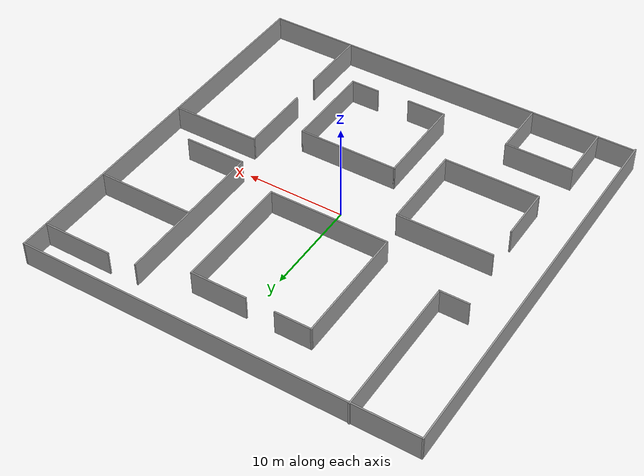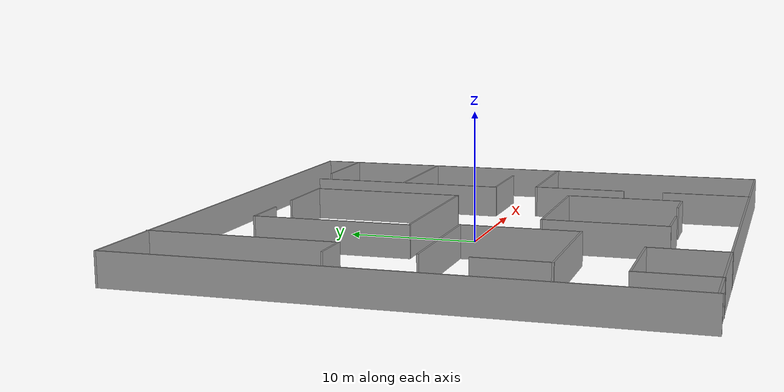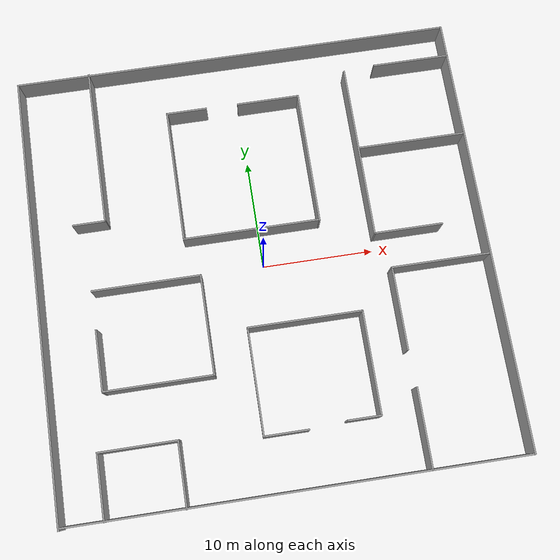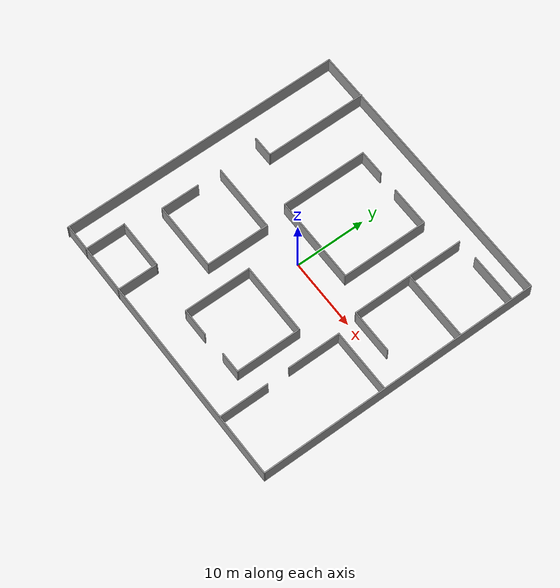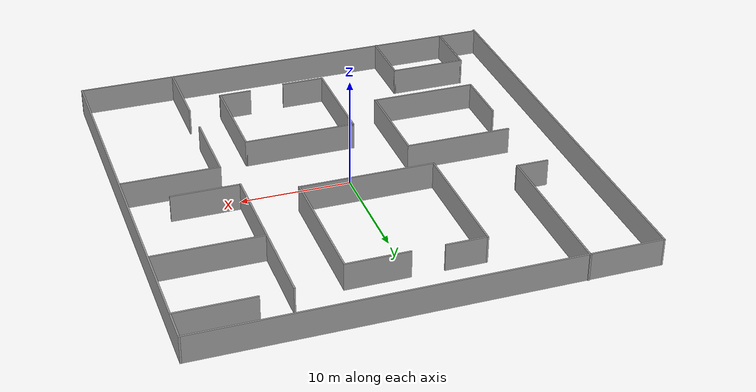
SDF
<?xml version='1.0'?>
<sdf version='1.7'>
  <model name='house01'>
    <pose>0 0.041078 0 0 -0 0</pose>
    <link name='Wall_0'>
      <collision name='Wall_0_Collision'>
        <geometry>
          <box>
            <size>40.15 0.15 2.5</size>
          </box>
        </geometry>
        <pose>0 0 1.25 0 -0 0</pose>
      </collision>
      <visual name='Wall_0_Visual'>
        <pose>0 0 1.25 0 -0 0</pose>
        <geometry>
          <box>
            <size>40.15 0.15 2.5</size>
          </box>
        </geometry>
        <material>
          <script>
            <uri>file://media/materials/scripts/gazebo.material</uri>
            <name>Gazebo/Grey</name>
          </script>
          <ambient>1 1 1 1</ambient>
        </material>
        <meta>
          <layer>0</layer>
        </meta>
      </visual>
      <pose>-20 -0.041078 0 0 -0 -1.5708</pose>
    </link>
    <link name='Wall_10'>
      <collision name='Wall_10_Collision'>
        <geometry>
          <box>
            <size>14.5 0.15 2.5</size>
          </box>
        </geometry>
        <pose>0 0 1.25 0 -0 0</pose>
      </collision>
      <visual name='Wall_10_Visual'>
        <pose>0 0 1.25 0 -0 0</pose>
        <geometry>
          <box>
            <size>14.5 0.15 2.5</size>
          </box>
        </geometry>
        <material>
          <script>
            <uri>file://media/materials/scripts/gazebo.material</uri>
            <name>Gazebo/Grey</name>
          </script>
          <ambient>1 1 1 1</ambient>
        </material>
        <meta>
          <layer>0</layer>
        </meta>
      </visual>
      <pose>-13.4074 12.8661 0 0 -0 -1.5708</pose>
    </link>
    <link name='Wall_11'>
      <collision name='Wall_11_Collision'>
        <geometry>
          <box>
            <size>3 0.15 2.5</size>
          </box>
        </geometry>
        <pose>0 0 1.25 0 -0 0</pose>
      </collision>
      <visual name='Wall_11_Visual'>
        <pose>0 0 1.25 0 -0 0</pose>
        <geometry>
          <box>
            <size>3 0.15 2.5</size>
          </box>
        </geometry>
        <material>
          <script>
            <uri>file://media/materials/scripts/gazebo.material</uri>
            <name>Gazebo/Grey</name>
          </script>
          <ambient>1 1 1 1</ambient>
        </material>
        <meta>
          <layer>0</layer>
        </meta>
      </visual>
      <pose>-14.8324 5.69108 0 0 -0 3.14159</pose>
    </link>
    <link name='Wall_13'>
      <collision name='Wall_13_Collision'>
        <geometry>
          <box>
            <size>12.25 0.15 2.5</size>
          </box>
        </geometry>
        <pose>0 0 1.25 0 -0 0</pose>
      </collision>
      <visual name='Wall_13_Visual'>
        <pose>0 0 1.25 0 -0 0</pose>
        <geometry>
          <box>
            <size>12.25 0.15 2.5</size>
          </box>
        </geometry>
        <material>
          <script>
            <uri>file://media/materials/scripts/gazebo.material</uri>
            <name>Gazebo/Grey</name>
          </script>
          <ambient>1 1 1 1</ambient>
        </material>
        <meta>
          <layer>0</layer>
        </meta>
      </visual>
      <pose>-6.66996 9.03154 0 0 -0 -1.5708</pose>
    </link>
    <link name='Wall_14'>
      <collision name='Wall_14_Collision'>
        <geometry>
          <box>
            <size>12.25 0.15 2.5</size>
          </box>
        </geometry>
        <pose>0 0 1.25 0 -0 0</pose>
      </collision>
      <visual name='Wall_14_Visual'>
        <pose>0 0 1.25 0 -0 0</pose>
        <geometry>
          <box>
            <size>12.25 0.15 2.5</size>
          </box>
        </geometry>
        <material>
          <script>
            <uri>file://media/materials/scripts/gazebo.material</uri>
            <name>Gazebo/Grey</name>
          </script>
          <ambient>1 1 1 1</ambient>
        </material>
        <meta>
          <layer>0</layer>
        </meta>
      </visual>
      <pose>-0.619958 2.98154 0 0 -0 0</pose>
    </link>
    <link name='Wall_18'>
      <collision name='Wall_18_Collision'>
        <geometry>
          <box>
            <size>3.75 0.15 2.5</size>
          </box>
        </geometry>
        <pose>0 0 1.25 0 -0 0</pose>
      </collision>
      <visual name='Wall_18_Visual'>
        <pose>0 0 1.25 0 -0 0</pose>
        <geometry>
          <box>
            <size>3.75 0.15 2.5</size>
          </box>
        </geometry>
        <material>
          <script>
            <uri>file://media/materials/scripts/gazebo.material</uri>
            <name>Gazebo/Grey</name>
          </script>
          <ambient>1 1 1 1</ambient>
        </material>
        <meta>
          <layer>0</layer>
        </meta>
      </visual>
      <pose>-4.86996 15.0815 0 0 -0 0</pose>
    </link>
    <link name='Wall_27'>
      <collision name='Wall_27_Collision'>
        <geometry>
          <box>
            <size>5.75 0.15 2.5</size>
          </box>
        </geometry>
        <pose>0 0 1.25 0 -0 0</pose>
      </collision>
      <visual name='Wall_27_Visual'>
        <pose>0 0 1.25 0 -0 0</pose>
        <geometry>
          <box>
            <size>5.75 0.15 2.5</size>
          </box>
        </geometry>
        <material>
          <script>
            <uri>file://media/materials/scripts/gazebo.material</uri>
            <name>Gazebo/Grey</name>
          </script>
          <ambient>1 1 1 1</ambient>
        </material>
        <meta>
          <layer>0</layer>
        </meta>
      </visual>
      <pose>2.73778 15.0534 0 0 -0 0</pose>
    </link>
    <link name='Wall_28'>
      <collision name='Wall_28_Collision'>
        <geometry>
          <box>
            <size>12.25 0.15 2.5</size>
          </box>
        </geometry>
        <pose>0 0 1.25 0 -0 0</pose>
      </collision>
      <visual name='Wall_28_Visual'>
        <pose>0 0 1.25 0 -0 0</pose>
        <geometry>
          <box>
            <size>12.25 0.15 2.5</size>
          </box>
        </geometry>
        <material>
          <script>
            <uri>file://media/materials/scripts/gazebo.material</uri>
            <name>Gazebo/Grey</name>
          </script>
          <ambient>1 1 1 1</ambient>
        </material>
        <meta>
          <layer>0</layer>
        </meta>
      </visual>
      <pose>5.53777 9.00338 0 0 -0 -1.5708</pose>
    </link>
    <link name='Wall_30'>
      <collision name='Wall_30_Collision'>
        <geometry>
          <box>
            <size>9.75 0.15 2.5</size>
          </box>
        </geometry>
        <pose>0 0 1.25 0 -0 0</pose>
      </collision>
      <visual name='Wall_30_Visual'>
        <pose>0 0 1.25 0 -0 0</pose>
        <geometry>
          <box>
            <size>9.75 0.15 2.5</size>
          </box>
        </geometry>
        <material>
          <script>
            <uri>file://media/materials/scripts/gazebo.material</uri>
            <name>Gazebo/Grey</name>
          </script>
          <ambient>1 1 1 1</ambient>
        </material>
        <meta>
          <layer>0</layer>
        </meta>
      </visual>
      <pose>-10.4369 -0.498737 0 0 -0 0</pose>
    </link>
    <link name='Wall_31'>
      <collision name='Wall_31_Collision'>
        <geometry>
          <box>
            <size>9 0.15 2.5</size>
          </box>
        </geometry>
        <pose>0 0 1.25 0 -0 0</pose>
      </collision>
      <visual name='Wall_31_Visual'>
        <pose>0 0 1.25 0 -0 0</pose>
        <geometry>
          <box>
            <size>9 0.15 2.5</size>
          </box>
        </geometry>
        <material>
          <script>
            <uri>file://media/materials/scripts/gazebo.material</uri>
            <name>Gazebo/Grey</name>
          </script>
          <ambient>1 1 1 1</ambient>
        </material>
        <meta>
          <layer>0</layer>
        </meta>
      </visual>
      <pose>-5.63687 -4.92374 0 0 -0 -1.5708</pose>
    </link>
    <link name='Wall_32'>
      <collision name='Wall_32_Collision'>
        <geometry>
          <box>
            <size>9.75 0.15 2.5</size>
          </box>
        </geometry>
        <pose>0 0 1.25 0 -0 0</pose>
      </collision>
      <visual name='Wall_32_Visual'>
        <pose>0 0 1.25 0 -0 0</pose>
        <geometry>
          <box>
            <size>9.75 0.15 2.5</size>
          </box>
        </geometry>
        <material>
          <script>
            <uri>file://media/materials/scripts/gazebo.material</uri>
            <name>Gazebo/Grey</name>
          </script>
          <ambient>1 1 1 1</ambient>
        </material>
        <meta>
          <layer>0</layer>
        </meta>
      </visual>
      <pose>-10.4369 -9.34874 0 0 -0 3.14159</pose>
    </link>
    <link name='Wall_33'>
      <collision name='Wall_33_Collision'>
        <geometry>
          <box>
            <size>5.5 0.15 2.5</size>
          </box>
        </geometry>
        <pose>0 0 1.25 0 -0 0</pose>
      </collision>
      <visual name='Wall_33_Visual'>
        <pose>0 0 1.25 0 -0 0</pose>
        <geometry>
          <box>
            <size>5.5 0.15 2.5</size>
          </box>
        </geometry>
        <material>
          <script>
            <uri>file://media/materials/scripts/gazebo.material</uri>
            <name>Gazebo/Grey</name>
          </script>
          <ambient>1 1 1 1</ambient>
        </material>
        <meta>
          <layer>0</layer>
        </meta>
      </visual>
      <pose>-15.2369 -6.67374 0 0 -0 1.5708</pose>
    </link>
    <link name='Wall_35'>
      <collision name='Wall_35_Collision'>
        <geometry>
          <box>
            <size>9.5 0.15 2.5</size>
          </box>
        </geometry>
        <pose>0 0 1.25 0 -0 0</pose>
      </collision>
      <visual name='Wall_35_Visual'>
        <pose>0 0 1.25 0 -0 0</pose>
        <geometry>
          <box>
            <size>9.5 0.15 2.5</size>
          </box>
        </geometry>
        <material>
          <script>
            <uri>file://media/materials/scripts/gazebo.material</uri>
            <name>Gazebo/Grey</name>
          </script>
          <ambient>1 1 1 1</ambient>
        </material>
        <meta>
          <layer>0</layer>
        </meta>
      </visual>
      <pose>-2.22977 -10.414 0 0 -0 -1.5708</pose>
    </link>
    <link name='Wall_36'>
      <collision name='Wall_36_Collision'>
        <geometry>
          <box>
            <size>4 0.15 2.5</size>
          </box>
        </geometry>
        <pose>0 0 1.25 0 -0 0</pose>
      </collision>
      <visual name='Wall_36_Visual'>
        <pose>0 0 1.25 0 -0 0</pose>
        <geometry>
          <box>
            <size>4 0.15 2.5</size>
          </box>
        </geometry>
        <material>
          <script>
            <uri>file://media/materials/scripts/gazebo.material</uri>
            <name>Gazebo/Grey</name>
          </script>
          <ambient>1 1 1 1</ambient>
        </material>
        <meta>
          <layer>0</layer>
        </meta>
      </visual>
      <pose>-0.304773 -15.089 0 0 -0 0</pose>
    </link>
    <link name='Wall_38'>
      <collision name='Wall_38_Collision'>
        <geometry>
          <box>
            <size>10.25 0.15 2.5</size>
          </box>
        </geometry>
        <pose>0 0 1.25 0 -0 0</pose>
      </collision>
      <visual name='Wall_38_Visual'>
        <pose>0 0 1.25 0 -0 0</pose>
        <geometry>
          <box>
            <size>10.25 0.15 2.5</size>
          </box>
        </geometry>
        <material>
          <script>
            <uri>file://media/materials/scripts/gazebo.material</uri>
            <name>Gazebo/Grey</name>
          </script>
          <ambient>1 1 1 1</ambient>
        </material>
        <meta>
          <layer>0</layer>
        </meta>
      </visual>
      <pose>2.82023 -5.739 0 0 -0 0</pose>
    </link>
    <link name='Wall_4'>
      <collision name='Wall_4_Collision'>
        <geometry>
          <box>
            <size>40.15 0.15 2.5</size>
          </box>
        </geometry>
        <pose>0 0 1.25 0 -0 0</pose>
      </collision>
      <visual name='Wall_4_Visual'>
        <pose>0 0 1.25 0 -0 0</pose>
        <geometry>
          <box>
            <size>40.15 0.15 2.5</size>
          </box>
        </geometry>
        <material>
          <script>
            <uri>file://media/materials/scripts/gazebo.material</uri>
            <name>Gazebo/Grey</name>
          </script>
          <ambient>1 1 1 1</ambient>
        </material>
        <meta>
          <layer>0</layer>
        </meta>
      </visual>
      <pose>0 19.9589 0 0 -0 0</pose>
    </link>
    <link name='Wall_41'>
      <collision name='Wall_41_Collision'>
        <geometry>
          <box>
            <size>9.25 0.15 2.5</size>
          </box>
        </geometry>
        <pose>0 0 1.25 0 -0 0</pose>
      </collision>
      <visual name='Wall_41_Visual'>
        <pose>0 0 1.25 0 -0 0</pose>
        <geometry>
          <box>
            <size>9.25 0.15 2.5</size>
          </box>
        </geometry>
        <material>
          <script>
            <uri>file://media/materials/scripts/gazebo.material</uri>
            <name>Gazebo/Grey</name>
          </script>
          <ambient>1 1 1 1</ambient>
        </material>
        <meta>
          <layer>0</layer>
        </meta>
      </visual>
      <pose>7.87023 -10.289 0 0 -0 -1.5708</pose>
    </link>
    <link name='Wall_42'>
      <collision name='Wall_42_Collision'>
        <geometry>
          <box>
            <size>3 0.15 2.5</size>
          </box>
        </geometry>
        <pose>0 0 1.25 0 -0 0</pose>
      </collision>
      <visual name='Wall_42_Visual'>
        <pose>0 0 1.25 0 -0 0</pose>
        <geometry>
          <box>
            <size>3 0.15 2.5</size>
          </box>
        </geometry>
        <material>
          <script>
            <uri>file://media/materials/scripts/gazebo.material</uri>
            <name>Gazebo/Grey</name>
          </script>
          <ambient>1 1 1 1</ambient>
        </material>
        <meta>
          <layer>0</layer>
        </meta>
      </visual>
      <pose>6.44523 -14.839 0 0 -0 3.14159</pose>
    </link>
    <link name='Wall_44'>
      <collision name='Wall_44_Collision'>
        <geometry>
          <box>
            <size>16 0.15 2.5</size>
          </box>
        </geometry>
        <pose>0 0 1.25 0 -0 0</pose>
      </collision>
      <visual name='Wall_44_Visual'>
        <pose>0 0 1.25 0 -0 0</pose>
        <geometry>
          <box>
            <size>16 0.15 2.5</size>
          </box>
        </geometry>
        <material>
          <script>
            <uri>file://media/materials/scripts/gazebo.material</uri>
            <name>Gazebo/Grey</name>
          </script>
          <ambient>1 1 1 1</ambient>
        </material>
        <meta>
          <layer>0</layer>
        </meta>
      </visual>
      <pose>10.1843 8.90696 0 0 -0 -1.5708</pose>
    </link>
    <link name='Wall_45'>
      <collision name='Wall_45_Collision'>
        <geometry>
          <box>
            <size>6.25 0.15 2.5</size>
          </box>
        </geometry>
        <pose>0 0 1.25 0 -0 0</pose>
      </collision>
      <visual name='Wall_45_Visual'>
        <pose>0 0 1.25 0 -0 0</pose>
        <geometry>
          <box>
            <size>6.25 0.15 2.5</size>
          </box>
        </geometry>
        <material>
          <script>
            <uri>file://media/materials/scripts/gazebo.material</uri>
            <name>Gazebo/Grey</name>
          </script>
          <ambient>1 1 1 1</ambient>
        </material>
        <meta>
          <layer>0</layer>
        </meta>
      </visual>
      <pose>13.2343 0.981962 0 0 -0 0</pose>
    </link>
    <link name='Wall_47'>
      <collision name='Wall_47_Collision'>
        <geometry>
          <box>
            <size>9.75 0.15 2.5</size>
          </box>
        </geometry>
        <pose>0 0 1.25 0 -0 0</pose>
      </collision>
      <visual name='Wall_47_Visual'>
        <pose>0 0 1.25 0 -0 0</pose>
        <geometry>
          <box>
            <size>9.75 0.15 2.5</size>
          </box>
        </geometry>
        <material>
          <script>
            <uri>file://media/materials/scripts/gazebo.material</uri>
            <name>Gazebo/Grey</name>
          </script>
          <ambient>1 1 1 1</ambient>
        </material>
        <meta>
          <layer>0</layer>
        </meta>
      </visual>
      <pose>15.0778 9.15871 0 0 -0 0</pose>
    </link>
    <link name='Wall_49'>
      <collision name='Wall_49_Collision'>
        <geometry>
          <box>
            <size>7 0.15 2.5</size>
          </box>
        </geometry>
        <pose>0 0 1.25 0 -0 0</pose>
      </collision>
      <visual name='Wall_49_Visual'>
        <pose>0 0 1.25 0 -0 0</pose>
        <geometry>
          <box>
            <size>7 0.15 2.5</size>
          </box>
        </geometry>
        <material>
          <script>
            <uri>file://media/materials/scripts/gazebo.material</uri>
            <name>Gazebo/Grey</name>
          </script>
          <ambient>1 1 1 1</ambient>
        </material>
        <meta>
          <layer>0</layer>
        </meta>
      </visual>
      <pose>16.5101 17.0191 0 0 -0 0</pose>
    </link>
    <link name='Wall_52'>
      <collision name='Wall_52_Collision'>
        <geometry>
          <box>
            <size>5.75 0.15 2.5</size>
          </box>
        </geometry>
        <pose>0 0 1.25 0 -0 0</pose>
      </collision>
      <visual name='Wall_52_Visual'>
        <pose>0 0 1.25 0 -0 0</pose>
        <geometry>
          <box>
            <size>5.75 0.15 2.5</size>
          </box>
        </geometry>
        <material>
          <script>
            <uri>file://media/materials/scripts/gazebo.material</uri>
            <name>Gazebo/Grey</name>
          </script>
          <ambient>1 1 1 1</ambient>
        </material>
        <meta>
          <layer>0</layer>
        </meta>
      </visual>
      <pose>-16.2292 -17.1167 0 0 -0 1.5708</pose>
    </link>
    <link name='Wall_53'>
      <collision name='Wall_53_Collision'>
        <geometry>
          <box>
            <size>7 0.15 2.5</size>
          </box>
        </geometry>
        <pose>0 0 1.25 0 -0 0</pose>
      </collision>
      <visual name='Wall_53_Visual'>
        <pose>0 0 1.25 0 -0 0</pose>
        <geometry>
          <box>
            <size>7 0.15 2.5</size>
          </box>
        </geometry>
        <material>
          <script>
            <uri>file://media/materials/scripts/gazebo.material</uri>
            <name>Gazebo/Grey</name>
          </script>
          <ambient>1 1 1 1</ambient>
        </material>
        <meta>
          <layer>0</layer>
        </meta>
      </visual>
      <pose>-12.8042 -14.3167 0 0 -0 0</pose>
    </link>
    <link name='Wall_54'>
      <collision name='Wall_54_Collision'>
        <geometry>
          <box>
            <size>5.75 0.15 2.5</size>
          </box>
        </geometry>
        <pose>0 0 1.25 0 -0 0</pose>
      </collision>
      <visual name='Wall_54_Visual'>
        <pose>0 0 1.25 0 -0 0</pose>
        <geometry>
          <box>
            <size>5.75 0.15 2.5</size>
          </box>
        </geometry>
        <material>
          <script>
            <uri>file://media/materials/scripts/gazebo.material</uri>
            <name>Gazebo/Grey</name>
          </script>
          <ambient>1 1 1 1</ambient>
        </material>
        <meta>
          <layer>0</layer>
        </meta>
      </visual>
      <pose>-9.37921 -17.1167 0 0 -0 -1.5708</pose>
    </link>
    <link name='Wall_56'>
      <collision name='Wall_56_Collision'>
        <geometry>
          <box>
            <size>9 0.15 2.5</size>
          </box>
        </geometry>
        <pose>0 0 1.25 0 -0 0</pose>
      </collision>
      <visual name='Wall_56_Visual'>
        <pose>0 0 1.25 0 -0 0</pose>
        <geometry>
          <box>
            <size>9 0.15 2.5</size>
          </box>
        </geometry>
        <material>
          <script>
            <uri>file://media/materials/scripts/gazebo.material</uri>
            <name>Gazebo/Grey</name>
          </script>
          <ambient>1 1 1 1</ambient>
        </material>
        <meta>
          <layer>0</layer>
        </meta>
      </visual>
      <pose>15.5598 -2.32434 0 0 -0 3.14159</pose>
    </link>
    <link name='Wall_57'>
      <collision name='Wall_57_Collision'>
        <geometry>
          <box>
            <size>7.5 0.15 2.5</size>
          </box>
        </geometry>
        <pose>0 0 1.25 0 -0 0</pose>
      </collision>
      <visual name='Wall_57_Visual'>
        <pose>0 0 1.25 0 -0 0</pose>
        <geometry>
          <box>
            <size>7.5 0.15 2.5</size>
          </box>
        </geometry>
        <material>
          <script>
            <uri>file://media/materials/scripts/gazebo.material</uri>
            <name>Gazebo/Grey</name>
          </script>
          <ambient>1 1 1 1</ambient>
        </material>
        <meta>
          <layer>0</layer>
        </meta>
      </visual>
      <pose>11.1348 -5.99934 0 0 -0 -1.5708</pose>
    </link>
    <link name='Wall_59'>
      <collision name='Wall_59_Collision'>
        <geometry>
          <box>
            <size>7 0.15 2.5</size>
          </box>
        </geometry>
        <pose>0 0 1.25 0 -0 0</pose>
      </collision>
      <visual name='Wall_59_Visual'>
        <pose>0 0 1.25 0 -0 0</pose>
        <geometry>
          <box>
            <size>7 0.15 2.5</size>
          </box>
        </geometry>
        <material>
          <script>
            <uri>file://media/materials/scripts/gazebo.material</uri>
            <name>Gazebo/Grey</name>
          </script>
          <ambient>1 1 1 1</ambient>
        </material>
        <meta>
          <layer>0</layer>
        </meta>
      </visual>
      <pose>11.2822 -16.417 0 0 -0 -1.5708</pose>
    </link>
    <link name='Wall_6'>
      <collision name='Wall_6_Collision'>
        <geometry>
          <box>
            <size>40 0.15 2.5</size>
          </box>
        </geometry>
        <pose>0 0 1.25 0 -0 0</pose>
      </collision>
      <visual name='Wall_6_Visual'>
        <pose>0 0 1.25 0 -0 0</pose>
        <geometry>
          <box>
            <size>40 0.15 2.5</size>
          </box>
        </geometry>
        <material>
          <script>
            <uri>file://media/materials/scripts/gazebo.material</uri>
            <name>Gazebo/Grey</name>
          </script>
          <ambient>1 1 1 1</ambient>
        </material>
        <meta>
          <layer>0</layer>
        </meta>
      </visual>
      <pose>20 0.033922 0 0 -0 -1.5708</pose>
    </link>
    <link name='Wall_7'>
      <collision name='Wall_7_Collision'>
        <geometry>
          <box>
            <size>40 0.15 2.5</size>
          </box>
        </geometry>
        <pose>0 0 1.25 0 -0 0</pose>
      </collision>
      <visual name='Wall_7_Visual'>
        <pose>0 0 1.25 0 -0 0</pose>
        <geometry>
          <box>
            <size>40 0.15 2.5</size>
          </box>
        </geometry>
        <material>
          <script>
            <uri>file://media/materials/scripts/gazebo.material</uri>
            <name>Gazebo/Grey</name>
          </script>
          <ambient>1 1 1 1</ambient>
        </material>
        <meta>
          <layer>0</layer>
        </meta>
      </visual>
      <pose>0.075 -19.8911 0 0 -0 3.14159</pose>
    </link>
    <static>1</static>
  </model>
</sdf>
